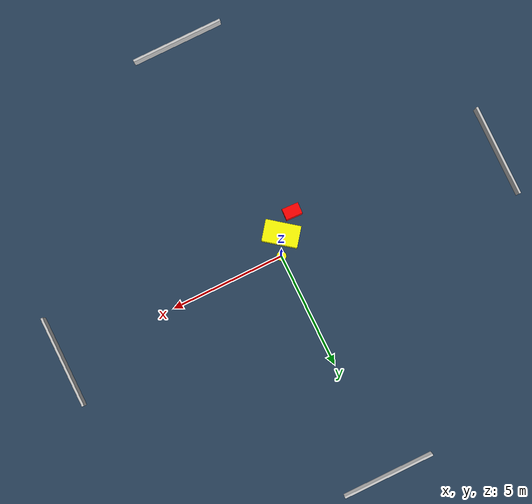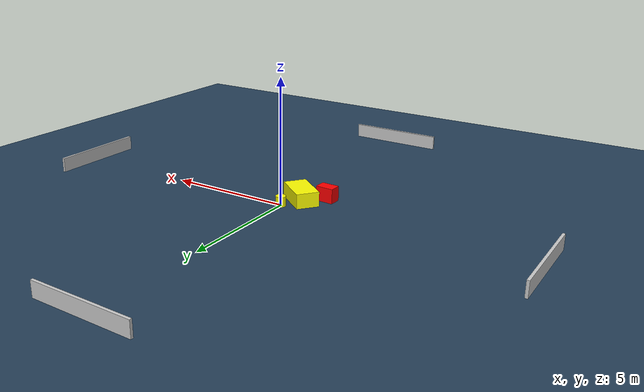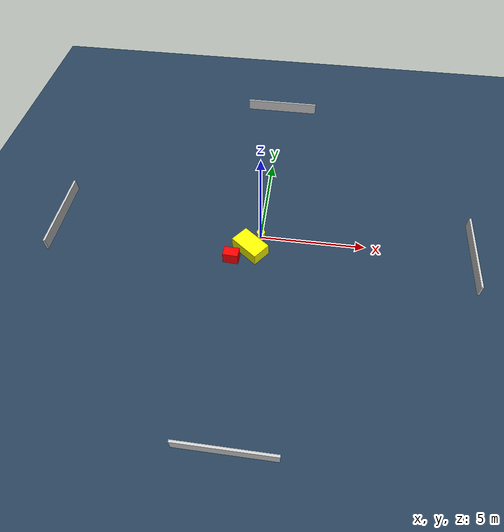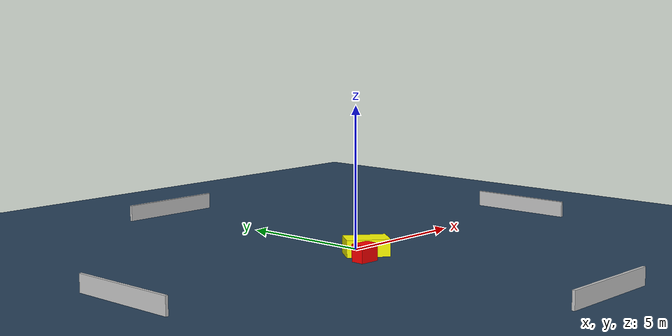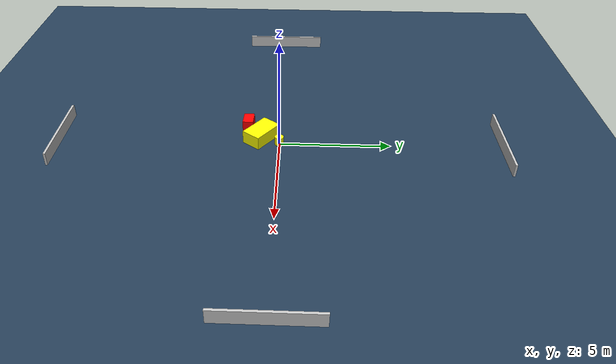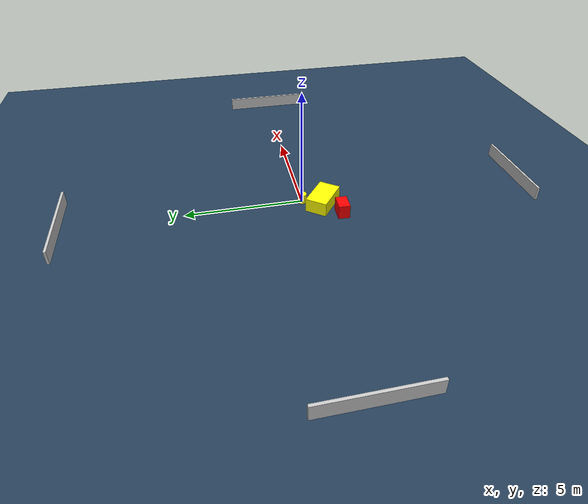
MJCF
<?xml version="1.0" ?>
<mujoco model="generated_environment">
  <option timestep="0.01" integrator="RK4" cone="elliptic"/>
  <default>
    <geom density="1"/>
  </default>
  <asset>
    <texture builtin="gradient" height="3072" name="skybox" rgb1="0.3 0.5 0.7" rgb2="0 0 0" type="skybox" width="512"/>
    <texture builtin="checker" height="300" name="groundplane" rgb1="0.2 0.3 0.4" rgb2="0.1 0.2 0.3" type="2d" width="300"/>
    <material name="groundplane" reflectance="0.2" texrepeat="5 5" texture="groundplane"/>
  </asset>
  <worldbody>
    <light dir="0 0 -1" directional="true" pos="0 0 1.5"/>
    <geom condim="3" friction="0.5 0.005 0.001" material="groundplane" name="floor" pos="0 0 0" size="0 0 0.05" type="plane"/>
    <body name="walls">
      <geom name="wall_1" condim="4" pos="-10.0 0.0 0.3" rgba="0.800000011920929 0.800000011920929 0.800000011920929 1.0" size="0.05 2.0 0.3" type="box"/>
      <geom name="wall_2" condim="4" pos="10.0 0.0 0.3" rgba="0.800000011920929 0.800000011920929 0.800000011920929 1.0" size="0.05 2.0 0.3" type="box"/>
      <geom name="wall_3" condim="4" pos="0.0 -10.0 0.3" rgba="0.800000011920929 0.800000011920929 0.800000011920929 1.0" size="2.0 0.05 0.3" type="box"/>
      <geom name="wall_4" condim="4" pos="0.0 10.0 0.3" rgba="0.800000011920929 0.800000011920929 0.800000011920929 1.0" size="2.0 0.05 0.3" type="box"/>
    </body>
    <body name="robot">
      <joint name="joint_x" type="slide" pos="0 0 0" axis="1 0 0"/>
      <joint name="joint_y" type="slide" pos="0 0 0" axis="0 1 0"/>
      <geom name="robot" type="cylinder" pos="0.0 0.0 0.2" size="0.2 0.2 0.0" mass="5.0" friction="1.0 0.005 0.0001" condim="4" rgba="1.0 1.0 0.0 1.0"/>
    </body>
    <body name="obstacle_1_movable">
      <geom name="obstacle_1_movable" condim="4" pos="-0.3964524502960361 -0.8283621753797485 0.3" euler="0 0 322.61419292874876" friction="0.0 0.005 0.001" rgba="1.0 1.0 0.0 1.0" size="0.7539178154123385 0.46063334734644806 0.3" type="box" mass="0.1"/>
      <joint type="free"/>
    </body>
    <body name="obstacle_2_static">
      <geom name="obstacle_2_static" condim="4" pos="-1.2007239631331093 -1.4686608361947209 0.3" euler="0 0 267.60607314156215" friction="0.0 0.005 0.001" rgba="1.0 0.0 0.0 1.0" size="0.24103046331571482 0.3602133823124233 0.3" type="box"/>
    </body>
  </worldbody>
  <actuator>
    <motor name="actuator_x" joint="joint_x" gear="1" ctrlrange="-1 1"/>
    <motor name="actuator_y" joint="joint_y" gear="1" ctrlrange="-1 1"/>
  </actuator>
</mujoco>
